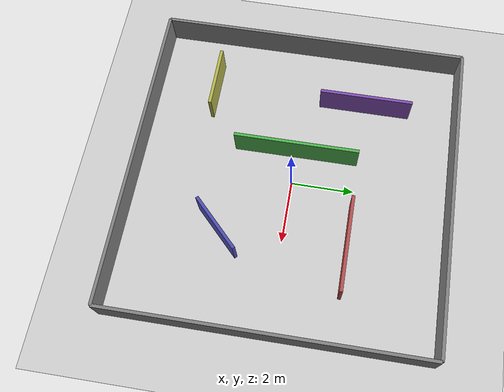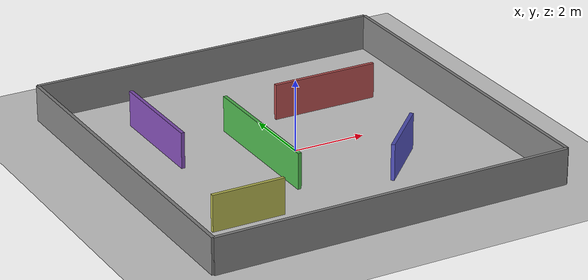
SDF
<?xml version="1.0" ?>
<sdf version="1.6">
  <world name="simple_maze">

    <!-- 光照 -->
    <include>
      <uri>model://sun</uri>
    </include>

    <!-- 地面 -->
    <include>
      <uri>model://ground_plane</uri>
    </include>

    <!-- 物理引擎 -->
    <physics type="ode">
      <max_step_size>0.001</max_step_size>
      <real_time_factor>1.0</real_time_factor>
      <real_time_update_rate>1000</real_time_update_rate>
    </physics>

    <!-- 外墙 -->
    <model name="wall_north">
      <static>true</static>
      <pose>0 5 0.5 0 0 0</pose>
      <link name="link">
        <collision name="collision"><geometry><box><size>10 0.1 1.0</size></box></geometry></collision>
        <visual name="visual"><geometry><box><size>10 0.1 1.0</size></box></geometry>
          <material><ambient>0.5 0.5 0.5 1</ambient></material>
        </visual>
      </link>
    </model>

    <model name="wall_south">
      <static>true</static>
      <pose>0 -5 0.5 0 0 0</pose>
      <link name="link">
        <collision name="collision"><geometry><box><size>10 0.1 1.0</size></box></geometry></collision>
        <visual name="visual"><geometry><box><size>10 0.1 1.0</size></box></geometry>
          <material><ambient>0.5 0.5 0.5 1</ambient></material>
        </visual>
      </link>
    </model>

    <model name="wall_east">
      <static>true</static>
      <pose>5 0 0.5 0 0 0</pose>
      <link name="link">
        <collision name="collision"><geometry><box><size>0.1 10 1.0</size></box></geometry></collision>
        <visual name="visual"><geometry><box><size>0.1 10 1.0</size></box></geometry>
          <material><ambient>0.5 0.5 0.5 1</ambient></material>
        </visual>
      </link>
    </model>

    <model name="wall_west">
      <static>true</static>
      <pose>-5 0 0.5 0 0 0</pose>
      <link name="link">
        <collision name="collision"><geometry><box><size>0.1 10 1.0</size></box></geometry></collision>
        <visual name="visual"><geometry><box><size>0.1 10 1.0</size></box></geometry>
          <material><ambient>0.5 0.5 0.5 1</ambient></material>
        </visual>
      </link>
    </model>

    <!-- 内部障碍物 -->
    <model name="obstacle_1">
      <static>true</static>
      <pose>2 2 0.5 0 0 0</pose>
      <link name="link">
        <collision name="collision"><geometry><box><size>3 0.1 1.0</size></box></geometry></collision>
        <visual name="visual"><geometry><box><size>3 0.1 1.0</size></box></geometry>
          <material><ambient>0.7 0.3 0.3 1</ambient></material>
        </visual>
      </link>
    </model>

    <model name="obstacle_2">
      <static>true</static>
      <pose>-1 0 0.5 0 0 0</pose>
      <link name="link">
        <collision name="collision"><geometry><box><size>0.1 4 1.0</size></box></geometry></collision>
        <visual name="visual"><geometry><box><size>0.1 4 1.0</size></box></geometry>
          <material><ambient>0.3 0.7 0.3 1</ambient></material>
        </visual>
      </link>
    </model>

    <model name="obstacle_3">
      <static>true</static>
      <pose>2 -2 0.5 0 0 0.785</pose>
      <link name="link">
        <collision name="collision"><geometry><box><size>2 0.1 1.0</size></box></geometry></collision>
        <visual name="visual"><geometry><box><size>2 0.1 1.0</size></box></geometry>
          <material><ambient>0.3 0.3 0.7 1</ambient></material>
        </visual>
      </link>
    </model>

    <model name="obstacle_4">
      <static>true</static>
      <pose>-3 -3 0.5 0 0 0</pose>
      <link name="link">
        <collision name="collision"><geometry><box><size>2 0.1 1.0</size></box></geometry></collision>
        <visual name="visual"><geometry><box><size>2 0.1 1.0</size></box></geometry>
          <material><ambient>0.7 0.7 0.3 1</ambient></material>
        </visual>
      </link>
    </model>

    <model name="obstacle_5">
      <static>true</static>
      <pose>-3 2 0.5 0 0 1.57</pose>
      <link name="link">
        <collision name="collision"><geometry><box><size>3 0.1 1.0</size></box></geometry></collision>
        <visual name="visual"><geometry><box><size>3 0.1 1.0</size></box></geometry>
          <material><ambient>0.5 0.3 0.7 1</ambient></material>
        </visual>
      </link>
    </model>

  </world>
</sdf>
